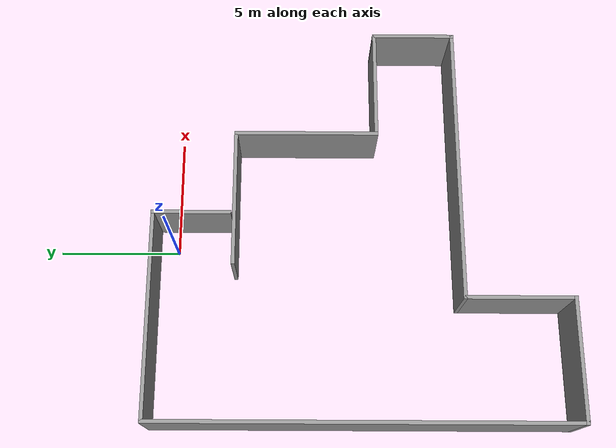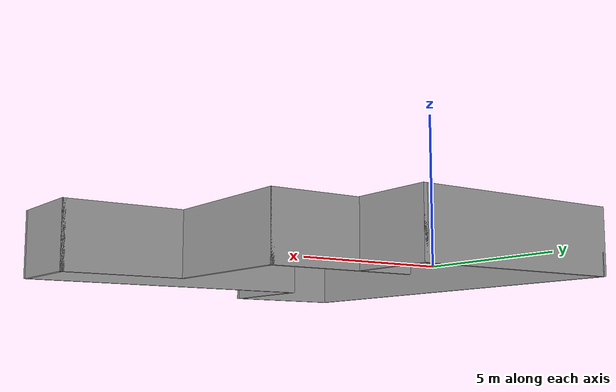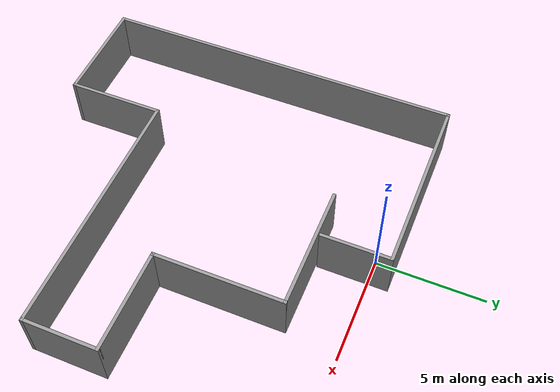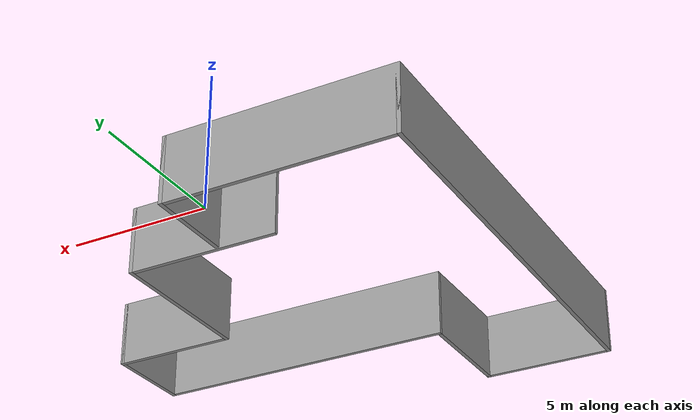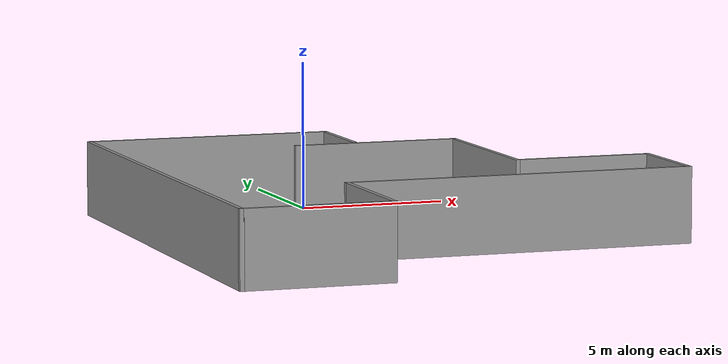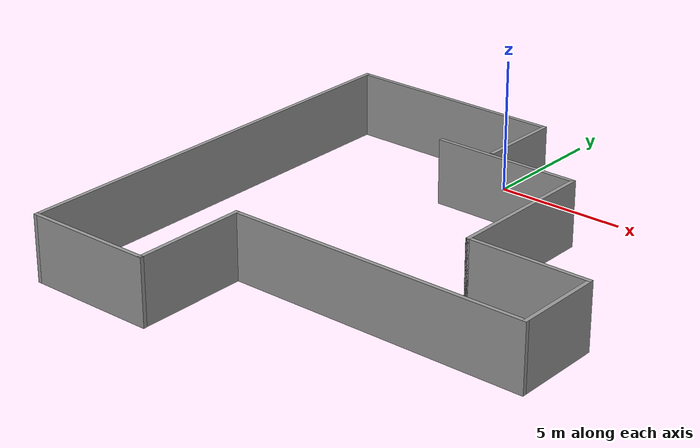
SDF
<?xml version='1.0'?>
<sdf version='1.7'>
  <model name='Untitled'>
    <pose>0.944999 -7.575 0 0 -0 0</pose>
    <link name='Wall_0'>
      <collision name='Wall_0_Collision'>
        <geometry>
          <box>
            <size>5.75 0.15 2.5</size>
          </box>
        </geometry>
        <pose>0 0 1.25 0 -0 0</pose>
      </collision>
      <visual name='Wall_0_Visual'>
        <pose>0 0 1.25 0 -0 0</pose>
        <geometry>
          <box>
            <size>5.75 0.15 2.5</size>
          </box>
        </geometry>
        <material>
          <script>
            <uri>file://media/materials/scripts/gazebo.material</uri>
            <name>Gazebo/Grey</name>
          </script>
          <ambient>1 1 1 1</ambient>
        </material>
        <meta>
          <layer>0</layer>
        </meta>
      </visual>
      <pose>0.825001 5.125 0 0 -0 0</pose>
    </link>
    <link name='Wall_1'>
      <collision name='Wall_1_Collision'>
        <geometry>
          <box>
            <size>6 0.15 2.5</size>
          </box>
        </geometry>
        <pose>0 0 1.25 0 -0 0</pose>
      </collision>
      <visual name='Wall_1_Visual'>
        <pose>0 0 1.25 0 -0 0</pose>
        <geometry>
          <box>
            <size>6 0.15 2.5</size>
          </box>
        </geometry>
        <material>
          <script>
            <uri>file://media/materials/scripts/gazebo.material</uri>
            <name>Gazebo/Grey</name>
          </script>
          <ambient>1 1 1 1</ambient>
        </material>
        <meta>
          <layer>0</layer>
        </meta>
      </visual>
      <pose>3.625 2.2 0 0 -0 -1.5708</pose>
    </link>
    <link name='Wall_2'>
      <collision name='Wall_2_Collision'>
        <geometry>
          <box>
            <size>4.75 0.15 2.5</size>
          </box>
        </geometry>
        <pose>0 0 1.25 0 -0 0</pose>
      </collision>
      <visual name='Wall_2_Visual'>
        <pose>0 0 1.25 0 -0 0</pose>
        <geometry>
          <box>
            <size>4.75 0.15 2.5</size>
          </box>
        </geometry>
        <material>
          <script>
            <uri>file://media/materials/scripts/gazebo.material</uri>
            <name>Gazebo/Grey</name>
          </script>
          <ambient>1 1 1 1</ambient>
        </material>
        <meta>
          <layer>0</layer>
        </meta>
      </visual>
      <pose>5.925 -0.725 0 0 -0 0</pose>
    </link>
    <link name='Wall_3'>
      <collision name='Wall_3_Collision'>
        <geometry>
          <box>
            <size>3.5 0.15 2.5</size>
          </box>
        </geometry>
        <pose>0 0 1.25 0 -0 0</pose>
      </collision>
      <visual name='Wall_3_Visual'>
        <pose>0 0 1.25 0 -0 0</pose>
        <geometry>
          <box>
            <size>3.5 0.15 2.5</size>
          </box>
        </geometry>
        <material>
          <script>
            <uri>file://media/materials/scripts/gazebo.material</uri>
            <name>Gazebo/Grey</name>
          </script>
          <ambient>1 1 1 1</ambient>
        </material>
        <meta>
          <layer>0</layer>
        </meta>
      </visual>
      <pose>8.225 -2.4 0 0 -0 -1.5708</pose>
    </link>
    <link name='Wall_4'>
      <collision name='Wall_4_Collision'>
        <geometry>
          <box>
            <size>11.75 0.15 2.5</size>
          </box>
        </geometry>
        <pose>0 0 1.25 0 -0 0</pose>
      </collision>
      <visual name='Wall_4_Visual'>
        <pose>0 0 1.25 0 -0 0</pose>
        <geometry>
          <box>
            <size>11.75 0.15 2.5</size>
          </box>
        </geometry>
        <material>
          <script>
            <uri>file://media/materials/scripts/gazebo.material</uri>
            <name>Gazebo/Grey</name>
          </script>
          <ambient>1 1 1 1</ambient>
        </material>
        <meta>
          <layer>0</layer>
        </meta>
      </visual>
      <pose>2.425 -4.075 0 0 -0 3.14159</pose>
    </link>
    <link name='Wall_5'>
      <collision name='Wall_5_Collision'>
        <geometry>
          <box>
            <size>4.5 0.15 2.5</size>
          </box>
        </geometry>
        <pose>0 0 1.25 0 -0 0</pose>
      </collision>
      <visual name='Wall_5_Visual'>
        <pose>0 0 1.25 0 -0 0</pose>
        <geometry>
          <box>
            <size>4.5 0.15 2.5</size>
          </box>
        </geometry>
        <material>
          <script>
            <uri>file://media/materials/scripts/gazebo.material</uri>
            <name>Gazebo/Grey</name>
          </script>
          <ambient>1 1 1 1</ambient>
        </material>
        <meta>
          <layer>0</layer>
        </meta>
      </visual>
      <pose>-3.375 -6.25 0 0 -0 -1.5708</pose>
    </link>
    <link name='Wall_6'>
      <collision name='Wall_6_Collision'>
        <geometry>
          <box>
            <size>5 0.15 2.5</size>
          </box>
        </geometry>
        <pose>0 0 1.25 0 -0 0</pose>
      </collision>
      <visual name='Wall_6_Visual'>
        <pose>0 0 1.25 0 -0 0</pose>
        <geometry>
          <box>
            <size>5 0.15 2.5</size>
          </box>
        </geometry>
        <material>
          <script>
            <uri>file://media/materials/scripts/gazebo.material</uri>
            <name>Gazebo/Grey</name>
          </script>
          <ambient>1 1 1 1</ambient>
        </material>
        <meta>
          <layer>0</layer>
        </meta>
      </visual>
      <pose>-5.8 -8.425 0 0 -0 3.14159</pose>
    </link>
    <link name='Wall_7'>
      <collision name='Wall_7_Collision'>
        <geometry>
          <box>
            <size>17 0.15 2.5</size>
          </box>
        </geometry>
        <pose>0 0 1.25 0 -0 0</pose>
      </collision>
      <visual name='Wall_7_Visual'>
        <pose>0 0 1.25 0 -0 0</pose>
        <geometry>
          <box>
            <size>17 0.15 2.5</size>
          </box>
        </geometry>
        <material>
          <script>
            <uri>file://media/materials/scripts/gazebo.material</uri>
            <name>Gazebo/Grey</name>
          </script>
          <ambient>1 1 1 1</ambient>
        </material>
        <meta>
          <layer>0</layer>
        </meta>
      </visual>
      <pose>-8.225 0 0 0 -0 1.5708</pose>
    </link>
    <link name='Wall_8'>
      <collision name='Wall_8_Collision'>
        <geometry>
          <box>
            <size>8.5 0.15 2.5</size>
          </box>
        </geometry>
        <pose>0 0 1.25 0 -0 0</pose>
      </collision>
      <visual name='Wall_8_Visual'>
        <pose>0 0 1.25 0 -0 0</pose>
        <geometry>
          <box>
            <size>8.5 0.15 2.5</size>
          </box>
        </geometry>
        <material>
          <script>
            <uri>file://media/materials/scripts/gazebo.material</uri>
            <name>Gazebo/Grey</name>
          </script>
          <ambient>1 1 1 1</ambient>
        </material>
        <meta>
          <layer>0</layer>
        </meta>
      </visual>
      <pose>-4.05 8.425 0 0 -0 0</pose>
    </link>
    <link name='Wall_9'>
      <collision name='Wall_9_Collision'>
        <geometry>
          <box>
            <size>3.25 0.15 2.5</size>
          </box>
        </geometry>
        <pose>0 0 1.25 0 -0 0</pose>
      </collision>
      <visual name='Wall_9_Visual'>
        <pose>0 0 1.25 0 -0 0</pose>
        <geometry>
          <box>
            <size>3.25 0.15 2.5</size>
          </box>
        </geometry>
        <material>
          <script>
            <uri>file://media/materials/scripts/gazebo.material</uri>
            <name>Gazebo/Grey</name>
          </script>
          <ambient>1 1 1 1</ambient>
        </material>
        <meta>
          <layer>0</layer>
        </meta>
      </visual>
      <pose>0.125001 6.875 0 0 -0 -1.5708</pose>
    </link>
    <static>1</static>
  </model>
</sdf>
